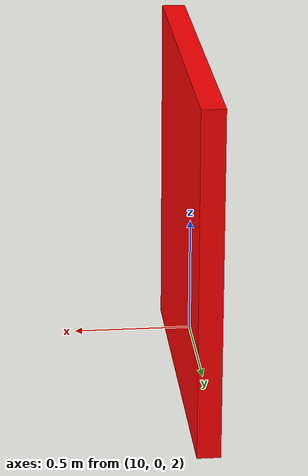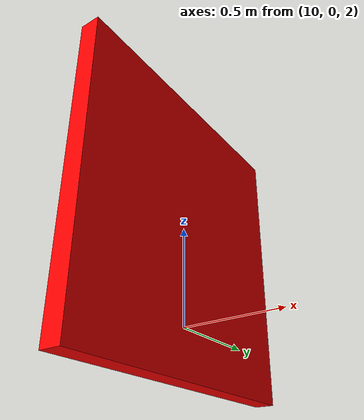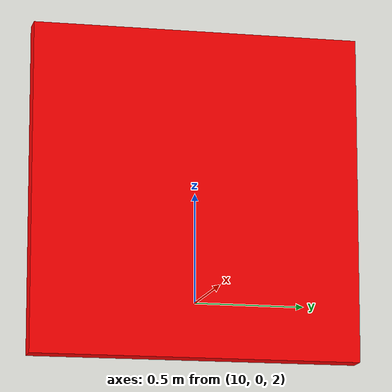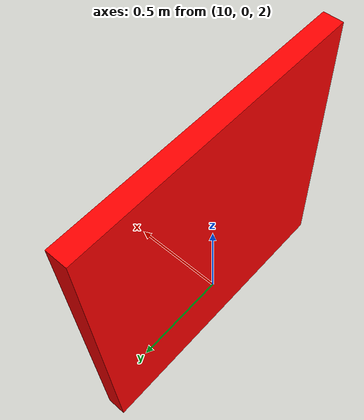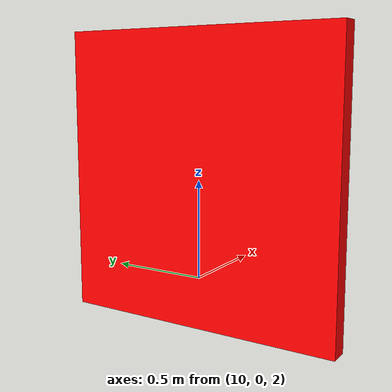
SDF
<?xml version="1.0" ?>
<sdf version="1.9">

  <model name="red_target_board">

    <static>true</static>

    <link name="target_link">

      <!--
        Gazebo world frame:
        x = forward
        y = lateral
        z = up

        Target:
        x = 10 m
        y = 0 m
        center height = 2.5 m
      -->

      <pose>
        10.0 0.0 2.5 0 0 0
      </pose>

      <visual name="target_visual">

        <geometry>
          <box>
            <!-- thickness / width / height -->
            <size>
              0.10 1.50 1.50
            </size>
          </box>
        </geometry>

        <material>

          <ambient>
            1.0 0.0 0.0 1.0
          </ambient>

          <diffuse>
            1.0 0.0 0.0 1.0
          </diffuse>

          <specular>
            0.1 0.1 0.1 1.0
          </specular>

        </material>

      </visual>

      <collision name="target_collision">

        <geometry>
          <box>
            <size>
              0.10 1.50 1.50
            </size>
          </box>
        </geometry>

      </collision>

    </link>

  </model>

</sdf>
